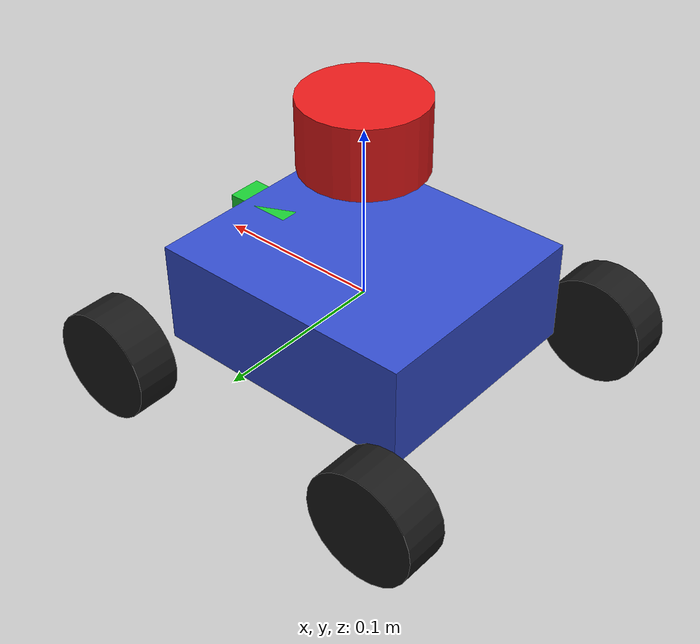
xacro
<?xml version="1.0"?>
<robot xmlns:xacro="http://www.ros.org/wiki/xacro" name="acg720_car">

  <!-- === 1. 几何（交接包第 4.1 节）=== -->
  <!-- 轮径 65 mm → 半径 32.5 mm。【待确认】UNVALIDATED_GEOMETRY -->
  <xacro:property name="wheel_radius" value="0.0325"/>
  <!-- 轮距 200 mm。【待确认】未实车标定 -->
  <xacro:property name="track_width" value="0.200"/>
  <!-- 轴距 185 mm。【待确认】未实车标定 -->
  <xacro:property name="wheelbase" value="0.185"/>

  <xacro:property name="wheel_offset_x" value="${wheelbase / 2}"/>
  <xacro:property name="wheel_offset_y" value="${track_width / 2}"/>

  <!-- 轮胎宽度：**未实测**。仅影响 RViz 观感与碰撞体，不影响运动学 -->
  <xacro:property name="wheel_width" value="0.026"/>

  <!-- 底盘外形：**未实测**，按 4 个轮子围出的空间估的。
       ⚠ 这两个值直接决定 Nav2 的 footprint，量出真值后必须同步改
         config/nav2_params.yaml（局部 + 全局代价地图各一处）。 -->
  <xacro:property name="base_length" value="0.16"/>
  <xacro:property name="base_width" value="0.14"/>
  <xacro:property name="base_height" value="0.06"/>

  <xacro:property name="wheel_offset_z" value="-0.0325"/>

  <!-- === 2. 质量（**未实测**，仅用于 RViz/惯量显示）=== -->
  <xacro:property name="base_mass" value="0.60"/>
  <xacro:property name="wheel_mass" value="0.05"/>

  <!-- === 3. 雷达安装位姿（**待实测**）
       ★ 上2D雷达（LD19 / RPLIDAR A1 级）之后，用卷尺量这三个值。
         z 影响代价地图的 obstacle_max_range；x/y 影响 /scan 与车体的相对位置，
         填错会让 AMCL 定位系统性偏移。 -->
  <xacro:property name="lidar_mount_x" value="0.0"/>
  <xacro:property name="lidar_mount_y" value="0.0"/>
  <xacro:property name="lidar_mount_z" value="0.10"/>
  <xacro:property name="lidar_radius" value="0.035"/>

  <xacro:property name="servo_mount_x" value="0.07"/>
  <xacro:property name="servo_mount_z" value="0.02"/>

  <!-- ================================================================
       底盘本体
       ================================================================ -->
  <link name="base_link">
    <visual>
      <geometry>
        <box size="${base_length} ${base_width} ${base_height}"/>
      </geometry>
      <material name="blue">
        <color rgba="0.2 0.3 0.8 1.0"/>
      </material>
    </visual>
    <collision>
      <geometry>
        <box size="${base_length} ${base_width} ${base_height}"/>
      </geometry>
    </collision>
    <inertial>
      <mass value="${base_mass}"/>
      <inertia ixx="0.002" ixy="0" ixz="0"
               iyy="0.003" iyz="0"
               izz="0.004"/>
    </inertial>
  </link>

  <xacro:macro name="drive_wheel" params="name x y">
    <link name="${name}">
      <visual>
        <geometry>
          <cylinder radius="${wheel_radius}" length="${wheel_width}"/>
        </geometry>
        <origin xyz="0 0 0" rpy="1.5708 0 0"/>
        <material name="black">
          <color rgba="0.1 0.1 0.1 1.0"/>
        </material>
      </visual>
      <collision>
        <geometry>
          <cylinder radius="${wheel_radius}" length="${wheel_width}"/>
        </geometry>
        <origin xyz="0 0 0" rpy="1.5708 0 0"/>
      </collision>
      <inertial>
        <mass value="${wheel_mass}"/>
        <inertia ixx="0.00002" ixy="0" ixz="0"
                 iyy="0.00002" iyz="0"
                 izz="0.00002"/>
      </inertial>
    </link>

    <joint name="${name}_joint" type="continuous">
      <parent link="base_link"/>
      <child link="${name}"/>
      <origin xyz="${x} ${y} ${wheel_offset_z}" rpy="0 0 0"/>
      <axis xyz="0 1 0"/>
    </joint>
  </xacro:macro>

  <!-- A 右前 -->
  <xacro:drive_wheel name="wheel_a_front_right" x="${wheel_offset_x}"  y="-${wheel_offset_y}"/>
  <!-- B 左前 -->
  <xacro:drive_wheel name="wheel_b_front_left"  x="${wheel_offset_x}"  y="${wheel_offset_y}"/>
  <!-- C 左后 -->
  <xacro:drive_wheel name="wheel_c_rear_left"   x="-${wheel_offset_x}" y="${wheel_offset_y}"/>
  <!-- D 右后 -->
  <xacro:drive_wheel name="wheel_d_rear_right"  x="-${wheel_offset_x}" y="-${wheel_offset_y}"/>

  <link name="laser_frame">
    <visual>
      <geometry>
        <cylinder radius="${lidar_radius}" length="0.04"/>
      </geometry>
      <material name="red">
        <color rgba="0.9 0.1 0.1 1.0"/>
      </material>
    </visual>
    <inertial>
      <mass value="0.05"/>
      <inertia ixx="0.00001" ixy="0" ixz="0"
               iyy="0.00001" iyz="0"
               izz="0.00001"/>
    </inertial>
  </link>

  <joint name="laser_joint" type="fixed">
    <parent link="base_link"/>
    <child link="laser_frame"/>
    <origin xyz="${lidar_mount_x} ${lidar_mount_y} ${lidar_mount_z}" rpy="0 0 0"/>
  </joint>

  <!-- ================================================================
       舵机 + VL53L0X 测距头（仅显示；扫描角待实测）
       ================================================================ -->
  <link name="obstacle_sensor_frame">
    <visual>
      <geometry>
        <box size="0.04 0.02 0.02"/>
      </geometry>
      <material name="green">
        <color rgba="0.1 0.8 0.2 1.0"/>
      </material>
    </visual>
    <inertial>
      <mass value="0.02"/>
      <inertia ixx="0.000001" ixy="0" ixz="0"
               iyy="0.000001" iyz="0"
               izz="0.000001"/>
    </inertial>
  </link>

  <joint name="obstacle_sensor_joint" type="fixed">
    <parent link="base_link"/>
    <child link="obstacle_sensor_frame"/>
    <origin xyz="${servo_mount_x} 0 ${servo_mount_z}" rpy="0 0 0"/>
  </joint>

</robot>
